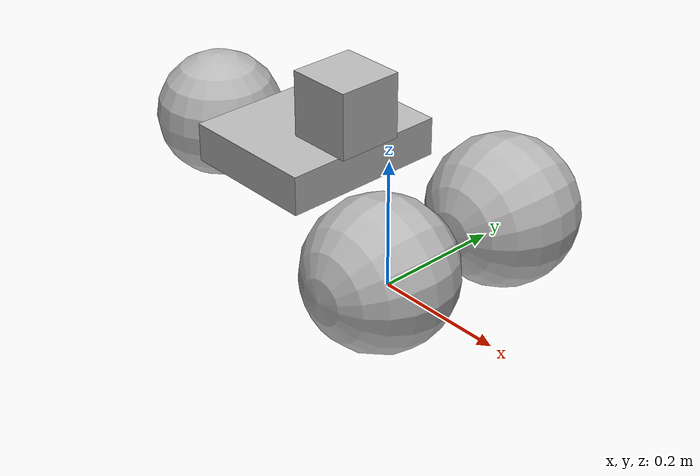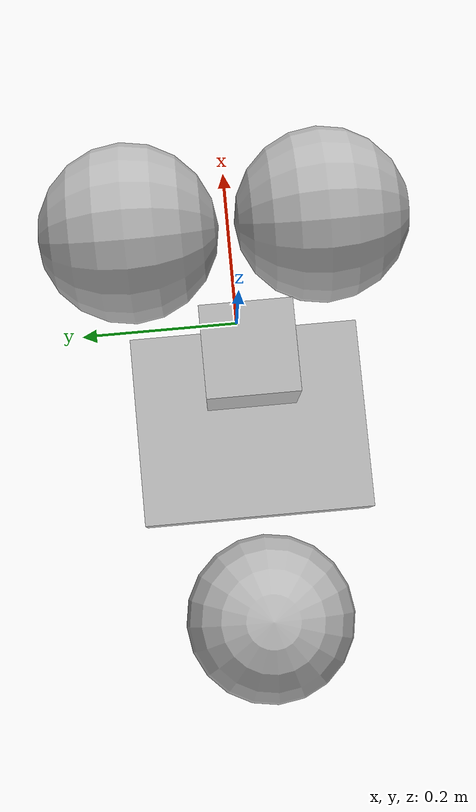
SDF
<?xml version='1.0'?>
<sdf version='1.7'>
  <model name='test_vehicle'>
    <link name='caster'>
      <pose>-0.372783 -0.003232 0.137217 0 -0 0</pose>
      <inertial>
        <mass>0.115319</mass>
        <inertia>
          <ixx>0.000437172</ixx>
          <ixy>0</ixy>
          <ixz>0</ixz>
          <iyy>0.000437172</iyy>
          <iyz>0</iyz>
          <izz>0.000437172</izz>
        </inertia>
        <pose>0 0 0 0 -0 0</pose>
      </inertial>
      <self_collide>0</self_collide>
      <enable_wind>0</enable_wind>
      <kinematic>0</kinematic>
      <visual name='visual'>
        <geometry>
          <sphere>
            <radius>0.0973523</radius>
          </sphere>
        </geometry>
        <material>
          <shader type='pixel'/>
        </material>
        <pose>0 0 0 0 -0 0</pose>
        <transparency>0</transparency>
        <cast_shadows>1</cast_shadows>
      </visual>
      <collision name='collision'>
        <laser_retro>0</laser_retro>
        <max_contacts>10</max_contacts>
        <pose>0 0 0 0 -0 0</pose>
        <geometry>
          <sphere>
            <radius>0.097352</radius>
          </sphere>
        </geometry>
        <surface>
          <friction>
            <ode>
              <mu>1</mu>
              <mu2>1</mu2>
              <fdir1>0 0 0</fdir1>
              <slip1>0</slip1>
              <slip2>0</slip2>
            </ode>
            <torsional>
              <coefficient>1</coefficient>
              <patch_radius>0</patch_radius>
              <surface_radius>0</surface_radius>
              <use_patch_radius>1</use_patch_radius>
              <ode>
                <slip>0</slip>
              </ode>
            </torsional>
          </friction>
          <bounce>
            <restitution_coefficient>0</restitution_coefficient>
            <threshold>1e+06</threshold>
          </bounce>
          <contact>
            <collide_without_contact>0</collide_without_contact>
            <collide_without_contact_bitmask>1</collide_without_contact_bitmask>
            <collide_bitmask>1</collide_bitmask>
            <ode>
              <soft_cfm>0</soft_cfm>
              <soft_erp>0.2</soft_erp>
              <kp>1e+13</kp>
              <kd>1</kd>
              <max_vel>0.01</max_vel>
              <min_depth>0</min_depth>
            </ode>
            <bullet>
              <split_impulse>1</split_impulse>
              <split_impulse_penetration_threshold>-0.01</split_impulse_penetration_threshold>
              <soft_cfm>0</soft_cfm>
              <soft_erp>0.2</soft_erp>
              <kp>1e+13</kp>
              <kd>1</kd>
            </bullet>
          </contact>
        </surface>
      </collision>
    </link>
    <link name='chassis'>
      <pose>-0.151427 1e-06 0.175 0 -0 0</pose>
      <inertial>
        <mass>0.00315768</mass>
        <inertia>
          <ixx>1.81291e-05</ixx>
          <ixy>0</ixy>
          <ixz>0</ixz>
          <iyy>1.25683e-05</iyy>
          <iyz>0</iyz>
          <izz>2.88842e-05</izz>
        </inertia>
        <pose>0 0 0 0 -0 0</pose>
      </inertial>
      <self_collide>0</self_collide>
      <enable_wind>0</enable_wind>
      <kinematic>0</kinematic>
      <visual name='visual'>
        <geometry>
          <box>
            <size>0.210517 0.255832 0.058698</size>
          </box>
        </geometry>
        <material>
          <shader type='pixel'/>
          <emissive>0 0 0 1</emissive>
        </material>
        <pose>0 0 0 0 -0 0</pose>
        <transparency>0</transparency>
        <cast_shadows>1</cast_shadows>
      </visual>
      <collision name='collision'>
        <laser_retro>0</laser_retro>
        <max_contacts>10</max_contacts>
        <pose>0 0 0 0 -0 0</pose>
        <geometry>
          <box>
            <size>0.210517 0.255832 0.058698</size>
          </box>
        </geometry>
        <surface>
          <friction>
            <ode>
              <mu>1</mu>
              <mu2>1</mu2>
              <fdir1>0 0 0</fdir1>
              <slip1>0</slip1>
              <slip2>0</slip2>
            </ode>
            <torsional>
              <coefficient>1</coefficient>
              <patch_radius>0</patch_radius>
              <surface_radius>0</surface_radius>
              <use_patch_radius>1</use_patch_radius>
              <ode>
                <slip>0</slip>
              </ode>
            </torsional>
          </friction>
          <bounce>
            <restitution_coefficient>0</restitution_coefficient>
            <threshold>1e+06</threshold>
          </bounce>
          <contact>
            <collide_without_contact>0</collide_without_contact>
            <collide_without_contact_bitmask>1</collide_without_contact_bitmask>
            <collide_bitmask>1</collide_bitmask>
            <ode>
              <soft_cfm>0</soft_cfm>
              <soft_erp>0.2</soft_erp>
              <kp>1e+13</kp>
              <kd>1</kd>
              <max_vel>0.01</max_vel>
              <min_depth>0</min_depth>
            </ode>
            <bullet>
              <split_impulse>1</split_impulse>
              <split_impulse_penetration_threshold>-0.01</split_impulse_penetration_threshold>
              <soft_cfm>0</soft_cfm>
              <soft_erp>0.2</soft_erp>
              <kp>1e+13</kp>
              <kd>1</kd>
            </bullet>
          </contact>
        </surface>
      </collision>
    </link>
    <link name='left_wheel'>
      <pose>0.098801 0.123921 0.118853 -1.5707 0 0</pose>
      <inertial>
        <mass>0.0968145</mass>
        <inertia>
          <ixx>0.000462959</ixx>
          <ixy>0</ixy>
          <ixz>0</ixz>
          <iyy>0.000462959</iyy>
          <iyz>0</iyz>
          <izz>0.000462959</izz>
        </inertia>
        <pose>0 0 0 0 -0 0</pose>
      </inertial>
      <self_collide>0</self_collide>
      <enable_wind>0</enable_wind>
      <kinematic>0</kinematic>
      <visual name='visual'>
        <geometry>
          <sphere>
            <radius>0.109338</radius>
          </sphere>
        </geometry>
        <material>
          <shader type='pixel'/>
        </material>
        <pose>0 0 0 0 -0 0</pose>
        <transparency>0</transparency>
        <cast_shadows>1</cast_shadows>
      </visual>
      <collision name='collision'>
        <laser_retro>0</laser_retro>
        <max_contacts>10</max_contacts>
        <pose>0 0 0 0 -0 0</pose>
        <geometry>
          <sphere>
            <radius>0.109338</radius>
          </sphere>
        </geometry>
        <surface>
          <friction>
            <ode>
              <mu>1</mu>
              <mu2>1</mu2>
              <fdir1>0 0 0</fdir1>
              <slip1>0</slip1>
              <slip2>0</slip2>
            </ode>
            <torsional>
              <coefficient>1</coefficient>
              <patch_radius>0</patch_radius>
              <surface_radius>0</surface_radius>
              <use_patch_radius>1</use_patch_radius>
              <ode>
                <slip>0</slip>
              </ode>
            </torsional>
          </friction>
          <bounce>
            <restitution_coefficient>0</restitution_coefficient>
            <threshold>1e+06</threshold>
          </bounce>
          <contact>
            <collide_without_contact>0</collide_without_contact>
            <collide_without_contact_bitmask>1</collide_without_contact_bitmask>
            <collide_bitmask>1</collide_bitmask>
            <ode>
              <soft_cfm>0</soft_cfm>
              <soft_erp>0.2</soft_erp>
              <kp>1e+13</kp>
              <kd>1</kd>
              <max_vel>0.01</max_vel>
              <min_depth>0.01</min_depth>
            </ode>
            <bullet>
              <split_impulse>1</split_impulse>
              <split_impulse_penetration_threshold>-0.01</split_impulse_penetration_threshold>
              <soft_cfm>0</soft_cfm>
              <soft_erp>0.2</soft_erp>
              <kp>1e+13</kp>
              <kd>1</kd>
            </bullet>
          </contact>
        </surface>
      </collision>
    </link>
    <link name='right_wheel'>
      <pose>0.101231 -0.110811 0.11889 -1.5707 0 0</pose>
      <inertial>
        <mass>0.0892385</mass>
        <inertia>
          <ixx>0.000404129</ixx>
          <ixy>0</ixy>
          <ixz>0</ixz>
          <iyy>0.000404129</iyy>
          <iyz>0</iyz>
          <izz>0.000404129</izz>
        </inertia>
        <pose>0 0 0 0 -0 0</pose>
      </inertial>
      <self_collide>0</self_collide>
      <enable_wind>0</enable_wind>
      <kinematic>0</kinematic>
      <visual name='visual'>
        <geometry>
          <sphere>
            <radius>0.106403</radius>
          </sphere>
        </geometry>
        <material>
          <shader type='pixel'/>
        </material>
        <pose>0 0 0 0 -0 0</pose>
        <transparency>0</transparency>
        <cast_shadows>1</cast_shadows>
      </visual>
      <collision name='collision'>
        <laser_retro>0</laser_retro>
        <max_contacts>10</max_contacts>
        <pose>0 0 0 0 -0 0</pose>
        <geometry>
          <sphere>
            <radius>0.106403</radius>
          </sphere>
        </geometry>
        <surface>
          <friction>
            <ode>
              <mu>1</mu>
              <mu2>1</mu2>
              <fdir1>0 0 0</fdir1>
              <slip1>0</slip1>
              <slip2>0</slip2>
            </ode>
            <torsional>
              <coefficient>1</coefficient>
              <patch_radius>0</patch_radius>
              <surface_radius>0</surface_radius>
              <use_patch_radius>1</use_patch_radius>
              <ode>
                <slip>0</slip>
              </ode>
            </torsional>
          </friction>
          <bounce>
            <restitution_coefficient>0</restitution_coefficient>
            <threshold>1e+06</threshold>
          </bounce>
          <contact>
            <collide_without_contact>0</collide_without_contact>
            <collide_without_contact_bitmask>1</collide_without_contact_bitmask>
            <collide_bitmask>1</collide_bitmask>
            <ode>
              <soft_cfm>0</soft_cfm>
              <soft_erp>0.2</soft_erp>
              <kp>1e+13</kp>
              <kd>1</kd>
              <max_vel>0.01</max_vel>
              <min_depth>0.01</min_depth>
            </ode>
            <bullet>
              <split_impulse>1</split_impulse>
              <split_impulse_penetration_threshold>-0.01</split_impulse_penetration_threshold>
              <soft_cfm>0</soft_cfm>
              <soft_erp>0.2</soft_erp>
              <kp>1e+13</kp>
              <kd>1</kd>
            </bullet>
          </contact>
        </surface>
      </collision>
    </link>
    <model name='depth_camera'>
      <link name='link'>
        <pose>0 0 0.05 0 -0 0</pose>
        <inertial>
          <mass>0.1</mass>
          <inertia>
            <ixx>0.000166667</ixx>
            <iyy>0.000166667</iyy>
            <izz>0.000166667</izz>
            <ixy>0</ixy>
            <ixz>0</ixz>
            <iyz>0</iyz>
          </inertia>
          <pose>0 0 0 0 -0 0</pose>
        </inertial>
        <collision name='collision'>
          <geometry>
            <box>
              <size>0.1 0.1 0.1</size>
            </box>
          </geometry>
          <max_contacts>10</max_contacts>
          <surface>
            <contact>
              <ode/>
            </contact>
            <bounce/>
            <friction>
              <torsional>
                <ode/>
              </torsional>
              <ode/>
            </friction>
          </surface>
        </collision>
        <visual name='visual'>
          <geometry>
            <box>
              <size>0.1 0.1 0.1</size>
            </box>
          </geometry>
        </visual>
        <sensor name='camera1' type='depth'>
          <update_rate>60</update_rate>
          <visualize>0</visualize>
          <camera>
            <horizontal_fov>1.92</horizontal_fov>
            <image>
              <width>640</width>
              <height>480</height>
              <format>R8G8B8</format>
            </image>
            <depth_camera>
              <output>depths</output>
            </depth_camera>
            <clip>
              <near>0.02</near>
              <far>300</far>
            </clip>
            <noise>
              <type>gaussian</type>
              <mean>0</mean>
              <stddev>0.007</stddev>
            </noise>
          </camera>
          <plugin name='camera_controller' filename='libgazebo_ros_camera.so'>
            <ros/>
            <camera_name>camera</camera_name>
            <min_depth>0.1</min_depth>
            <max_depth>500</max_depth>
          </plugin>
        </sensor>
        <self_collide>0</self_collide>
        <enable_wind>0</enable_wind>
        <kinematic>0</kinematic>
      </link>
      <pose>-0.084272 -0.002311 0.205981 0 -0 0</pose>
    </model>
    <joint name='caster_wheel' type='ball'>
      <parent>chassis</parent>
      <child>caster</child>
      <pose>0 0 0 0 -0 0</pose>
      <physics>
        <ode>
          <limit>
            <cfm>0</cfm>
            <erp>0.2</erp>
          </limit>
          <suspension>
            <cfm>0</cfm>
            <erp>0.2</erp>
          </suspension>
        </ode>
      </physics>
    </joint>
    <joint name='chassis_JOINT_0' type='revolute'>
      <parent>chassis</parent>
      <child>depth_camera::link</child>
      <pose>0 0 0 0 -0 0</pose>
      <axis>
        <xyz>1 0 0</xyz>
        <limit>
          <lower>-1.79769e+308</lower>
          <upper>1.79769e+308</upper>
          <effort>-1</effort>
          <velocity>-1</velocity>
        </limit>
        <dynamics>
          <spring_reference>0</spring_reference>
          <spring_stiffness>0</spring_stiffness>
          <damping>0</damping>
          <friction>0</friction>
        </dynamics>
      </axis>
      <physics>
        <ode>
          <limit>
            <cfm>0</cfm>
            <erp>0.2</erp>
          </limit>
          <suspension>
            <cfm>0</cfm>
            <erp>0.2</erp>
          </suspension>
        </ode>
      </physics>
    </joint>
    <joint name='left_wheel_joint' type='revolute'>
      <parent>chassis</parent>
      <child>left_wheel</child>
      <pose>0 0 0 0 -0 0</pose>
      <axis>
        <xyz>0 0 1</xyz>
        <limit>
          <lower>-1.79769e+308</lower>
          <upper>1.79769e+308</upper>
          <effort>-1</effort>
          <velocity>-1</velocity>
        </limit>
        <dynamics>
          <spring_reference>0</spring_reference>
          <spring_stiffness>0</spring_stiffness>
          <damping>0</damping>
          <friction>0</friction>
        </dynamics>
      </axis>
      <physics>
        <ode>
          <limit>
            <cfm>0</cfm>
            <erp>0.2</erp>
          </limit>
          <suspension>
            <cfm>0</cfm>
            <erp>0.2</erp>
          </suspension>
        </ode>
      </physics>
    </joint>
    <joint name='right_wheel_joint' type='revolute'>
      <parent>chassis</parent>
      <child>right_wheel</child>
      <pose>0 0 0 0 -0 0</pose>
      <axis>
        <xyz>0 0 1</xyz>
        <limit>
          <lower>-1.79769e+308</lower>
          <upper>1.79769e+308</upper>
          <effort>-1</effort>
          <velocity>-1</velocity>
        </limit>
        <dynamics>
          <spring_reference>0</spring_reference>
          <spring_stiffness>0</spring_stiffness>
          <damping>0</damping>
          <friction>0</friction>
        </dynamics>
      </axis>
      <physics>
        <ode>
          <limit>
            <cfm>0</cfm>
            <erp>0.2</erp>
          </limit>
          <suspension>
            <cfm>0</cfm>
            <erp>0.2</erp>
          </suspension>
        </ode>
      </physics>
    </joint>
    <static>0</static>
    <allow_auto_disable>0</allow_auto_disable>
    <plugin name='diff_drive' filename='libgazebo_ros_diff_drive.so'>
      <ros/>
      <left_joint>left_wheel_joint</left_joint>
      <right_joint>right_wheel_joint</right_joint>
      <wheel_separation>1.25</wheel_separation>
      <wheel_diameter>0.6</wheel_diameter>
      <max_wheel_torque>20</max_wheel_torque>
      <max_wheel_acceleration>1.0</max_wheel_acceleration>
      <publish_odom>1</publish_odom>
      <publish_odom_tf>1</publish_odom_tf>
      <publish_wheel_tf>1</publish_wheel_tf>
      <odometry_frame>odom</odometry_frame>
      <robot_base_frame>chassis</robot_base_frame>
    </plugin>
  </model>
</sdf>
